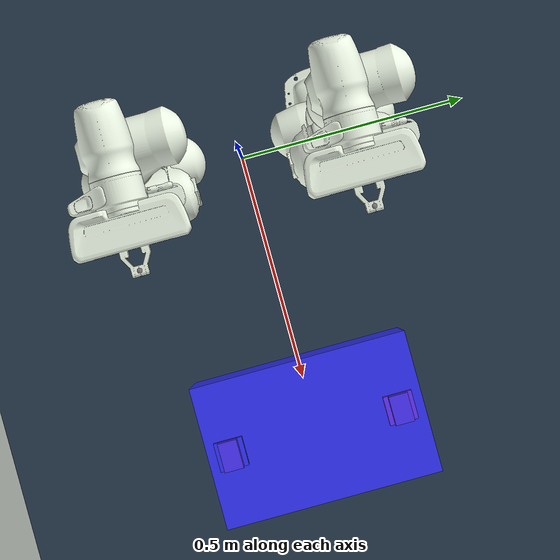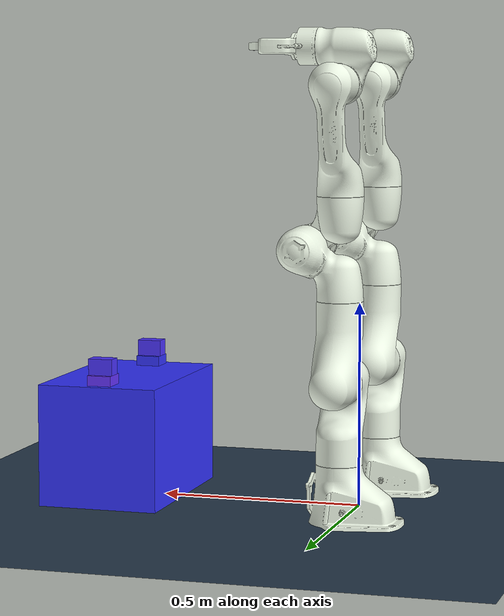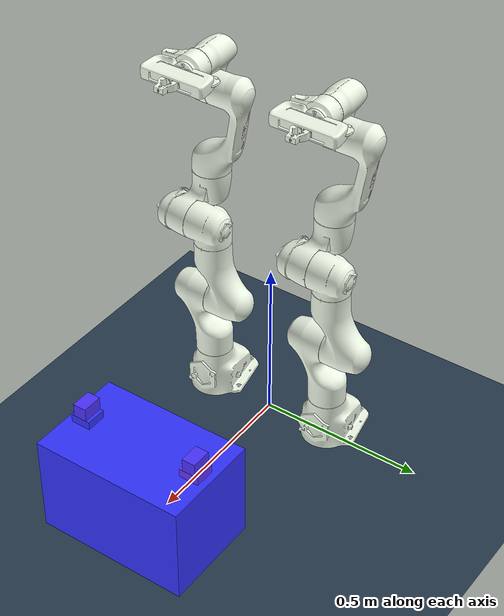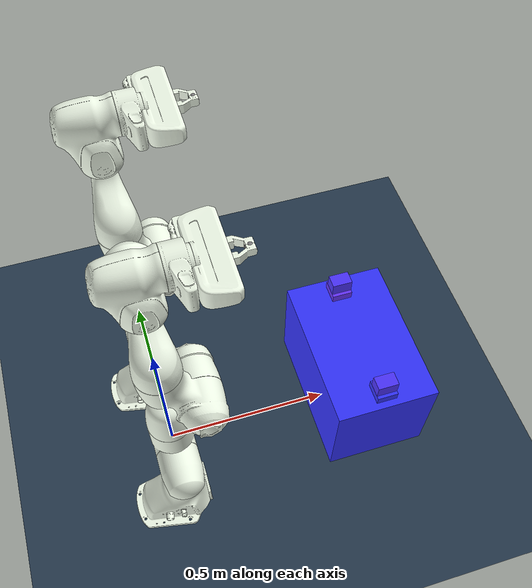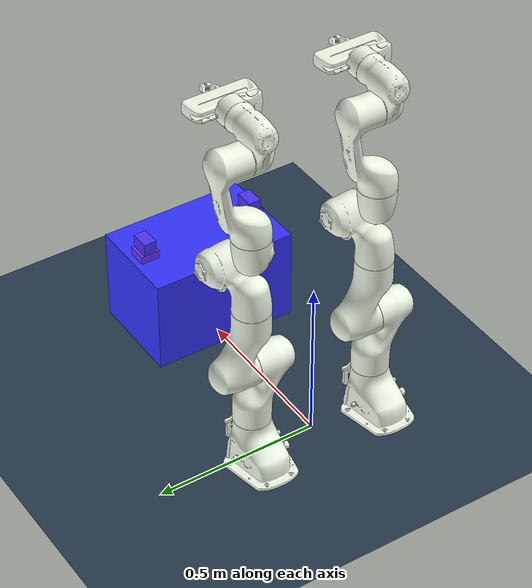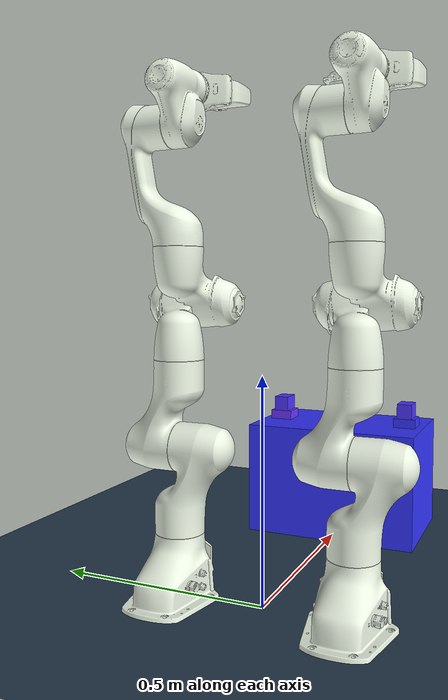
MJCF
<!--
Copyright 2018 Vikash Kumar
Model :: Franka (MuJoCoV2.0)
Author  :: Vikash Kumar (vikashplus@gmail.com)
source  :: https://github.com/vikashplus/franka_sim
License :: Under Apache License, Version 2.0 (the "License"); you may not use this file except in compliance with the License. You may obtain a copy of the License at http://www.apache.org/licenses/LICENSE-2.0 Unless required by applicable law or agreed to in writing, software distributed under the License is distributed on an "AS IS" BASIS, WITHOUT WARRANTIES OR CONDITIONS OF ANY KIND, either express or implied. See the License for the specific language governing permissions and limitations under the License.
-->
<mujoco model="franka_panda v200">

    <include file="assets/basic_scene.xml"/>
    <include file="assets/assets.xml"/>
    <compiler meshdir=""/>

    <worldbody>

        <include file="assets/chain0_gripper_end.xml"/>
        <include file="assets/chain1_gripper_end.xml"/>

        <body name="objectbox" pos="0 0 0">
            <joint type="free"/>
            <inertial pos="0.6 0 0.151" mass="10" diaginertia="0.01 0.01 0.01" />
            <!-- main box -->
            <geom class="panda_col" pos="0.6 0 0.15" size="0.15 0.23 0.15" type="box" />
            <geom class="panda_viz" pos="0.6 0 0.15" size="0.15 0.23 0.15" type="box" rgba="0.2 0.2 1 1"/>
                <!-- right upbox -->
            <geom class="panda_col" pos="0.6 0.18 0.3125" size="0.03 0.03 0.0125" type="box" />
            <geom class="panda_viz" pos="0.6 0.18 0.3125" size="0.03 0.03 0.0125" type="box" rgba="0.4 0.2 1 1"/>
            <geom class="panda_col" pos="0.6 0.18 0.345" size="0.03 0.02 0.02" type="box" />
            <geom class="panda_viz" pos="0.6 0.18 0.345" size="0.03 0.02 0.02" type="box" rgba="0.3 0.2 1 1"/>
                <!-- left upbox -->
            <geom class="panda_col" pos="0.6 -0.18 0.3125" size="0.03 0.03 0.0125" type="box" />
            <geom class="panda_viz" pos="0.6 -0.18 0.3125" size="0.03 0.03 0.0125" type="box" rgba="0.2 0.2 1 1"/>
            <geom class="panda_col" pos="0.6 -0.18 0.345" size="0.03 0.02 0.02" type="box" />
            <geom class="panda_viz" pos="0.6 -0.18 0.345" size="0.03 0.02 0.02" type="box" rgba="0.3 0.2 1 1"/>

        </body>

    </worldbody>

    <include file='assets/actuator0_position_gripper.xml'/>
    <include file='assets/actuator1_position_gripper.xml'/>

</mujoco>

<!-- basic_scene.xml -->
<mujocoinclude>

    <asset>
        <texture name="texplane" type="2d" builtin="checker" rgb1=".2 .3 .4" rgb2=".1 0.15 0.2"
                width="512" height="512"/>
        <material name="MatGnd" reflectance="0.5" texture="texplane" texrepeat="1 1" texuniform="true"/>
    </asset>

    <worldbody>
        <light directional="false" diffuse=".8 .8 .8" specular="0.3 0.3 0.3" pos="1  1 3" dir="-1 -1 -3"/>
        <light directional="false" diffuse=".8 .8 .8" specular="0.3 0.3 0.3" pos="1 -1 3" dir="-1 1 -3"/>
        <light directional="false" diffuse=".8 .8 .8" specular="0.3 0.3 0.3" pos="-1 0 3" dir="1 0 -3" />
        <geom name="ground" pos="0 0 0" size="5 5 10" material="MatGnd" type="plane" contype="1" conaffinity="1"/>

    </worldbody>
</mujocoinclude>

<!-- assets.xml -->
<mujocoinclude>

    <compiler angle="radian"/>
    <option timestep='0.0005' iterations="50" tolerance="1e-10" solver="Newton" jacobian="dense" cone="elliptic" noslip_iterations="30" noslip_tolerance="1e-5"/>
    <size nuser_actuator="5"/>

    <asset>
        <mesh name="link0_col" file="../panda_description/meshes/collision/link0.stl"/>
        <mesh name="link1_col" file="../panda_description/meshes/collision/link1.stl"/>
        <mesh name="link2_col" file="../panda_description/meshes/collision/link2.stl"/>
        <mesh name="link3_col" file="../panda_description/meshes/collision/link3.stl"/>
        <mesh name="link4_col" file="../panda_description/meshes/collision/link4.stl"/>
        <mesh name="link5_col" file="../panda_description/meshes/collision/link5.stl"/>
        <mesh name="link6_col" file="../panda_description/meshes/collision/link6.stl"/>
        <mesh name="link7_col" file="../panda_description/meshes/collision/link7.stl"/>
        <mesh name="hand_col" file="../panda_description/meshes/collision/hand.stl"/>
        <mesh name="finger_col" file="../panda_description/meshes/collision/finger.stl"/>
        <mesh name="link0_viz" file="../panda_description/meshes/visual/link0.stl"/>
        <mesh name="link1_viz" file="../panda_description/meshes/visual/link1.stl"/>
        <mesh name="link2_viz" file="../panda_description/meshes/visual/link2.stl"/>
        <mesh name="link3_viz" file="../panda_description/meshes/visual/link3.stl"/>
        <mesh name="link4_viz" file="../panda_description/meshes/visual/link4.stl"/>
        <mesh name="link5_viz" file="../panda_description/meshes/visual/link5.stl"/>
        <mesh name="link6_viz" file="../panda_description/meshes/visual/link6.stl"/>
        <mesh name="link7_viz" file="../panda_description/meshes/visual/link7.stl"/>
        <mesh name="hand_viz" file="../panda_description/meshes/visual/hand.stl"/>
        <mesh name="finger_viz" file="../panda_description/meshes/visual/finger.stl"/>

        <mesh name="box_viz" file="../panda_description/meshes/visual/panda_box.stl"/>
        <mesh name="tool_viz" file="../panda_description/meshes/visual/franka_tool.stl"/>

    </asset>

    <default>
        <default class="panda">
            <joint pos="0 0 0" axis="0 0 1" limited="true"/>
            <position forcelimited="true" ctrllimited="true" user="1002 40 2001 -0.005 0.005"/>
            <default class="panda_viz">
                <geom contype="0" conaffinity="0" group="0" type="mesh" rgba=".95 .99 .92 1" mass="0"/>
            </default>

            <default class="panda_col">
                <geom contype="1" conaffinity="1" group="3" type="mesh" rgba=".5 .6 .7 1"/>
            </default>
            <default class="panda_arm">
                <joint damping="400"/>
            </default>
            <default class="panda_forearm">
                <joint damping="50"/>
            </default>
            <default class="panda_finger">
                <joint damping="100" armature='5'/>
                <geom friction="1 0.5 0.0001" solref="0.01 1" solimp="0.8 0.9 0.001" margin="0.001" user="0" rgba="0.5 0.6 0.7 .4" contype="1" conaffinity="0" condim="6" group="3" />
                <position user="1002 40 2001 -0.0001 0.0001"/>
            </default>
        </default>

    </default>

    <sensor>
        <jointpos name="fr_arm_jp1" joint="panda0_joint1"/>
        <jointpos name="fr_arm_jp2" joint="panda0_joint2"/>
        <jointpos name="fr_arm_jp3" joint="panda0_joint3"/>
        <jointpos name="fr_arm_jp4" joint="panda0_joint4"/>
        <jointpos name="fr_arm_jp5" joint="panda0_joint5"/>
        <jointpos name="fr_arm_jp6" joint="panda0_joint6"/>
        <jointpos name="fr_arm_jp7" joint="panda0_joint7"/>
        <jointvel name="fr_arm_jv1" joint="panda0_joint1"/>
        <jointvel name="fr_arm_jv2" joint="panda0_joint2"/>
        <jointvel name="fr_arm_jv3" joint="panda0_joint3"/>
        <jointvel name="fr_arm_jv4" joint="panda0_joint4"/>
        <jointvel name="fr_arm_jv5" joint="panda0_joint5"/>
        <jointvel name="fr_arm_jv6" joint="panda0_joint6"/>
        <jointvel name="fr_arm_jv7" joint="panda0_joint7"/>
        <force name="Force_sensor0" site="FT0"/>
        <torque name="Torque_sensor0" site="FT0"/>
        <force name="Force_sensor1" site="FT1"/>
        <torque name="Torque_sensor1" site="FT1"/>
    </sensor>

</mujocoinclude>

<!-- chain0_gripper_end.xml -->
<mujocoinclude>

<!-- Robot limits pulled from https://frankaemika.github.io/docs/control_parameters.html#constants -->

    <body name="panda0_link0" childclass="panda" pos="0 -0.2 0">
        <inertial pos="0 0 0" mass="2.91242" diaginertia="0.01 0.01 0.01" />
        <geom class="panda_viz" mesh="link0_viz"/>
        <geom class="panda_col" mesh="link0_col" mass="2.91242"/>
        <body name="panda0_link1" pos="0 0 0.333">
            <inertial pos="0 0 0" mass="2.7063" diaginertia="0.01 0.01 0.01" />
            <joint name="panda0_joint1" range="-2.8973 2.8973" class="panda_arm"/>
            <geom class="panda_viz" mesh="link1_viz"/>
            <geom class="panda_col" mesh="link1_col" mass="2.7063"/>
            <body name="panda0_link2" pos="0 0 0" euler="-1.57 0 0">
                <inertial pos="0 0 0" mass="2.73046" diaginertia="0.01 0.01 0.01" />
                <joint name="panda0_joint2" range="-1.7628 1.7628" class="panda_arm"/>
                <geom class="panda_viz" mesh="link2_viz"/>
                <geom class="panda_col" mesh="link2_col" mass="2.73046"/>
                <body name="panda0_link3" pos="0 -0.316 0" euler="1.57 0 0">
                    <inertial pos="0 0 0" mass="2.04104" diaginertia="0.01 0.01 0.01" />
                    <joint name="panda0_joint3" range="-2.8973 2.8973" class="panda_arm"/>
                    <geom class="panda_viz" mesh="link3_viz"/>
                    <geom class="panda_col" mesh="link3_col" mass="2.04104"/>
                    <body name="panda0_link4" pos="0.0825 0 0" euler="1.57 0 0">
                        <inertial pos="0 0 0" mass="2.08129" diaginertia="0.01 0.01 0.01" />
                        <joint name="panda0_joint4" range="-3.0718 0.0698" class="panda_arm"/>
                        <geom class="panda_viz" mesh="link4_viz"/>
                        <geom class="panda_col" mesh="link4_col" mass="2.08129"/>
                        <body name="panda0_link5" pos="-0.0825 0.384 0" euler="-1.57 0 0">
                            <inertial pos="0 0 0" mass="3.00049" diaginertia="0.01 0.01 0.01" />
                            <joint name="panda0_joint5" range="-2.8973 2.8973" class="panda_forearm"/>
                            <geom class="panda_viz" mesh="link5_viz"/>
                            <geom class="panda_col" mesh="link5_col" mass="3.00049"/>
                            <body name="panda0_link6" pos="0 0 0" euler="1.57 0 1.57">
                                <inertial pos="0 0 0" mass="1.3235" diaginertia="0.01 0.01 0.01" />
                                <joint name="panda0_joint6" range="-1.6573 2.1127" class="panda_forearm"/>
                                <geom class="panda_viz" mesh="link6_viz"/>
                                <geom class="panda_col" mesh="link6_col" mass="1.3235"/>
                                <body name="panda0_link7" pos="0.088 0 0" euler='1.57 0 0.7854'>
                                    <inertial pos="0 0 0" mass="0.2" diaginertia="0.01 0.01 0.01" />
                                    <joint name="panda0_joint7" range="-2.8973 2.8973" axis="0 0 1" class="panda_forearm"/>
                                    <geom class="panda_viz" mesh="link7_viz"/>
                                    <geom class="panda_col" mesh="link7_col" mass="0.2"/>
                                    <site name="FT0" pos="0 0 0"/>

                                    <!-- End Effector -->
                                    <body name="franka0_gripper">
                                        <inertial pos="0 0 0" mass="0.81909" diaginertia="0.01 0.01 0.01" />
                                        <geom pos="0 0 0.107" quat="0.92388 0 0 -0.382683" class="panda_viz" mesh="hand_viz"/>
                                        <geom pos="0 0 0.107" quat="0.92388 0 0 -0.382683" class="panda_col" mesh="hand_col" mass="0.81909"/>
                                        <site name='end0_effector' pos='0 0 .210' size='0.01' euler='0 0 -0.785398'/>

                                        <body name="panda0_leftfinger" pos="0 0 0.1654" quat="0.92388 0 0 -0.382683" childclass='panda_finger'>
                                            <inertial pos="0 0 0" mass="0.0927059" diaginertia="0.01 0.01 0.01" />
                                            <joint name="panda0_finger_joint1"  axis="0 1 0" type="slide" range="0 0.04" class="panda_finger"/>
                                            <geom class="panda_viz" mesh="finger_viz"/>
                                            <geom class="panda_col" mesh="finger_col"/>
\
                                        </body>
                                        <body name="panda0_rightfinger" pos="0 0 0.1654" quat="0.92388 0 0 -0.382683"  childclass='panda_finger'>
                                            <inertial pos="0 0 0" mass="0.0927059" diaginertia="0.01 0.01 0.01" />
                                            <joint name="panda0_finger_joint2" axis="0 -1 0" type="slide" range="0 0.04" class="panda_finger"/>
                                            <geom quat="0 0 0 1" class="panda_viz" mesh="finger_viz"/>
                                            <geom quat="0 0 0 1" class="panda_col" mesh="finger_col"/>
                                        </body>
                                    </body>

                                </body>
                            </body>
                        </body>
                    </body>
                </body>
            </body>
        </body>
    </body>
</mujocoinclude>

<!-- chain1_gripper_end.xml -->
<mujocoinclude>

<!-- Robot limits pulled from https://frankaemika.github.io/docs/control_parameters.html#constants -->

    <body name="panda1_link0" childclass="panda" pos="0 0.2 0">
        <inertial pos="0 0 0" mass="2.91242" diaginertia="0.01 0.01 0.01" />
        <geom class="panda_viz" mesh="link0_viz"/>
        <geom class="panda_col" mesh="link0_col" mass="2.91242"/>
        <body name="panda1_link1" pos="0 0 0.333">
            <inertial pos="0 0 0" mass="2.7063" diaginertia="0.01 0.01 0.01" />
            <joint name="panda1_joint1" range="-2.8973 2.8973" class="panda_arm"/>
            <geom class="panda_viz" mesh="link1_viz"/>
            <geom class="panda_col" mesh="link1_col" mass="2.7063"/>
            <body name="panda1_link2" pos="0 0 0" euler="-1.57 0 0">
                <inertial pos="0 0 0" mass="2.73046" diaginertia="0.01 0.01 0.01" />
                <joint name="panda1_joint2" range="-1.7628 1.7628" class="panda_arm"/>
                <geom class="panda_viz" mesh="link2_viz"/>
                <geom class="panda_col" mesh="link2_col" mass="2.73046"/>
                <body name="panda1_link3" pos="0 -0.316 0" euler="1.57 0 0">
                    <inertial pos="0 0 0" mass="2.04104" diaginertia="0.01 0.01 0.01" />
                    <joint name="panda1_joint3" range="-2.8973 2.8973" class="panda_arm"/>
                    <geom class="panda_viz" mesh="link3_viz"/>
                    <geom class="panda_col" mesh="link3_col" mass="2.04104"/>
                    <body name="panda1_link4" pos="0.0825 0 0" euler="1.57 0 0">
                        <inertial pos="0 0 0" mass="2.08129" diaginertia="0.01 0.01 0.01" />
                        <joint name="panda1_joint4" range="-3.0718 0.0698" class="panda_arm"/>
                        <geom class="panda_viz" mesh="link4_viz"/>
                        <geom class="panda_col" mesh="link4_col" mass="2.08129"/>
                        <body name="panda1_link5" pos="-0.0825 0.384 0" euler="-1.57 0 0">
                            <inertial pos="0 0 0" mass="3.00049" diaginertia="0.01 0.01 0.01" />
                            <joint name="panda1_joint5" range="-2.8973 2.8973" class="panda_forearm"/>
                            <geom class="panda_viz" mesh="link5_viz"/>
                            <geom class="panda_col" mesh="link5_col" mass="3.00049"/>
                            <body name="panda1_link6" pos="0 0 0" euler="1.57 0 1.57">
                                <inertial pos="0 0 0" mass="1.3235" diaginertia="0.01 0.01 0.01" />
                                <joint name="panda1_joint6" range="-1.6573 2.1127" class="panda_forearm"/>
                                <geom class="panda_viz" mesh="link6_viz"/>
                                <geom class="panda_col" mesh="link6_col" mass="1.3235"/>
                                <body name="panda1_link7" pos="0.088 0 0" euler='1.57 0 0.7854'>
                                    <inertial pos="0 0 0" mass="0.2" diaginertia="0.01 0.01 0.01" />
                                    <joint name="panda1_joint7" range="-2.8973 2.8973" axis="0 0 1" class="panda_forearm"/>
                                    <geom class="panda_viz" mesh="link7_viz"/>
                                    <geom class="panda_col" mesh="link7_col" mass="0.2"/>
                                    <site name="FT1" pos="0 0 0"/>

                                    <!-- End Effector -->
                                    <body name="franka1_gripper">
                                        <inertial pos="0 0 0" mass="0.81909" diaginertia="0.01 0.01 0.01" />
                                        <geom pos="0 0 0.107" quat="0.92388 0 0 -0.382683" class="panda_viz" mesh="hand_viz"/>
                                        <geom pos="0 0 0.107" quat="0.92388 0 0 -0.382683" class="panda_col" mesh="hand_col" mass="0.81909"/>
                                        <site name='end1_effector' pos='0 0 .210' size='0.01' euler='0 0 -0.785398'/>

                                        <body name="panda1_leftfinger" pos="0 0 0.1654" quat="0.92388 0 0 -0.382683" childclass='panda_finger'>
                                            <inertial pos="0 0 0" mass="0.0927059" diaginertia="0.01 0.01 0.01" />
                                            <joint name="panda1_finger_joint1"  axis="0 1 0" type="slide" range="0 0.04" class="panda_finger"/>
                                            <geom class="panda_viz" mesh="finger_viz"/>
                                            <geom class="panda_col" mesh="finger_col"/>

                                        </body>
                                        <body name="panda1_rightfinger" pos="0 0 0.1654" quat="0.92388 0 0 -0.382683"  childclass='panda_finger'>
                                            <inertial pos="0 0 0" mass="0.0927059" diaginertia="0.01 0.01 0.01" />
                                            <joint name="panda1_finger_joint2" axis="0 -1 0" type="slide" range="0 0.04" class="panda_finger"/>
                                            <geom quat="0 0 0 1" class="panda_viz" mesh="finger_viz"/>
                                            <geom quat="0 0 0 1" class="panda_col" mesh="finger_col"/>

                                        </body>
                                    </body>

                                </body>
                            </body>
                        </body>
                    </body>
                </body>
            </body>
        </body>
    </body>
</mujocoinclude>

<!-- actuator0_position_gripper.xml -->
<mujocoinclude>

    <actuator>

        <position name="panda0_joint1" joint="panda0_joint1" class="panda" kp="870" forcerange="-87 87" ctrlrange="-2.8973 2.8973"/>
        <position name="panda0_joint2" joint="panda0_joint2" class="panda" kp="870" forcerange="-87 87" ctrlrange="-1.7628 1.7628"/>
        <position name="panda0_joint3" joint="panda0_joint3" class="panda" kp="870" forcerange="-87 87" ctrlrange="-2.8973 2.8973"/>
        <position name="panda0_joint4" joint="panda0_joint4" class="panda" kp="870" forcerange="-87 87" ctrlrange="-3.0718 0.0698"/>
        <position name="panda0_joint5" joint="panda0_joint5" class="panda" kp="120" forcerange="-12 12" ctrlrange="-2.8973 2.8973"/>
        <position name="panda0_joint6" joint="panda0_joint6" class="panda" kp="120" forcerange="-12 12" ctrlrange="-0.0873 2.1127"/>
        <position name="panda0_joint7" joint="panda0_joint7" class="panda" kp="120" forcerange="-12 12" ctrlrange="-2.8973 2.8973"/>

        <position name="panda0_leftfinger" joint="panda0_finger_joint1" class="panda" kp="20" forcerange="-20 20" ctrlrange="0 0.04"/>
        <position name="panda0_rightfinger" joint="panda0_finger_joint2" class="panda" kp="20" forcerange="-20 20" ctrlrange="0 0.04"/>

    </actuator>
</mujocoinclude>

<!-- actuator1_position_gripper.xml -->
<mujocoinclude>

    <actuator>

        <position name="panda1_joint1" joint="panda1_joint1" class="panda" kp="870" forcerange="-87 87" ctrlrange="-2.8973 2.8973"/>
        <position name="panda1_joint2" joint="panda1_joint2" class="panda" kp="870" forcerange="-87 87" ctrlrange="-1.7628 1.7628"/>
        <position name="panda1_joint3" joint="panda1_joint3" class="panda" kp="870" forcerange="-87 87" ctrlrange="-2.8973 2.8973"/>
        <position name="panda1_joint4" joint="panda1_joint4" class="panda" kp="870" forcerange="-87 87" ctrlrange="-3.0718 0.0698"/>
        <position name="panda1_joint5" joint="panda1_joint5" class="panda" kp="120" forcerange="-12 12" ctrlrange="-2.8973 2.8973"/>
        <position name="panda1_joint6" joint="panda1_joint6" class="panda" kp="120" forcerange="-12 12" ctrlrange="-0.0873 2.1127"/>
        <position name="panda1_joint7" joint="panda1_joint7" class="panda" kp="120" forcerange="-12 12" ctrlrange="-2.8973 2.8973"/>

        <position name="panda1_leftfinger" joint="panda1_finger_joint1" class="panda" kp="20" forcerange="-20 20" ctrlrange="0 0.04"/>
        <position name="panda1_rightfinger" joint="panda1_finger_joint2" class="panda" kp="20" forcerange="-20 20" ctrlrange="0 0.04"/>

    </actuator>
</mujocoinclude>
